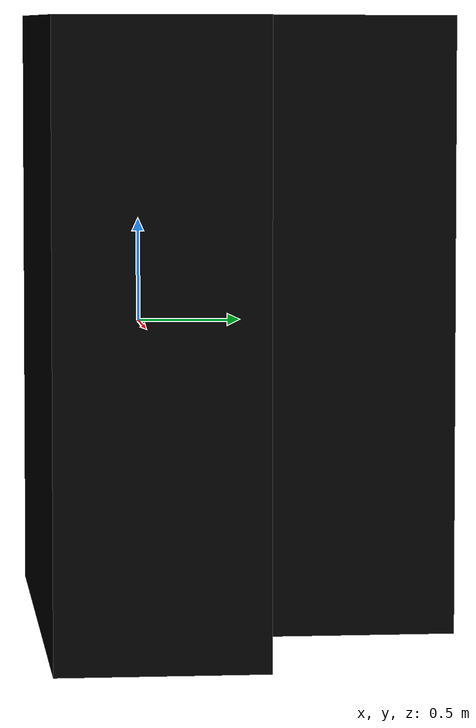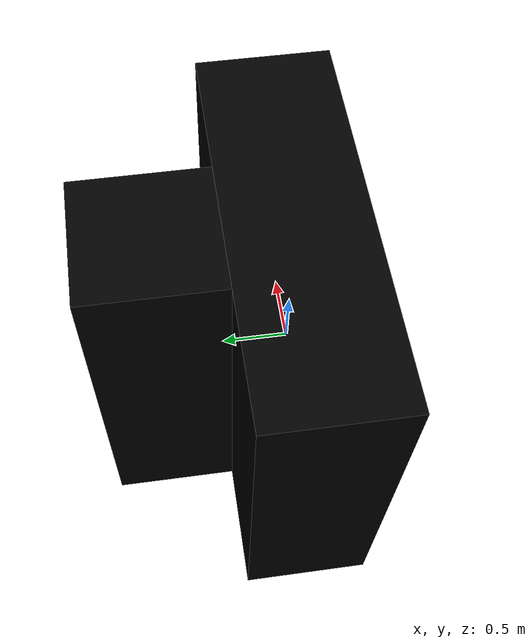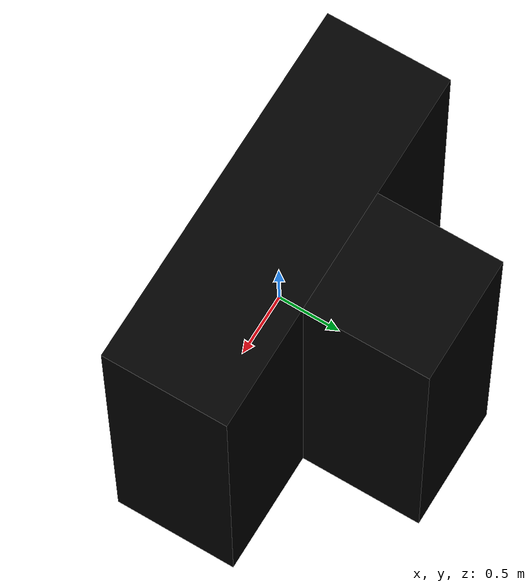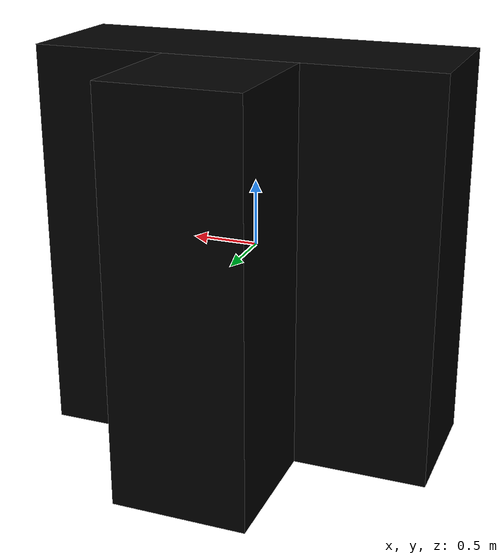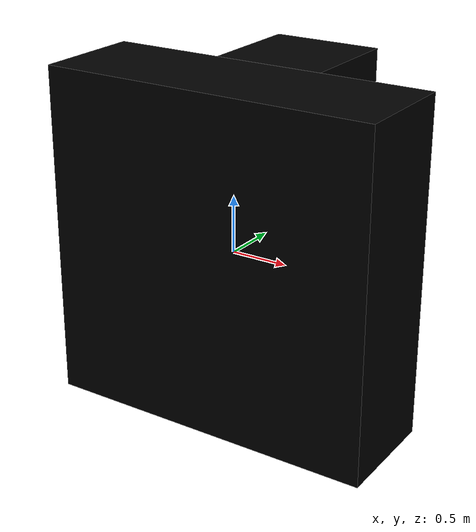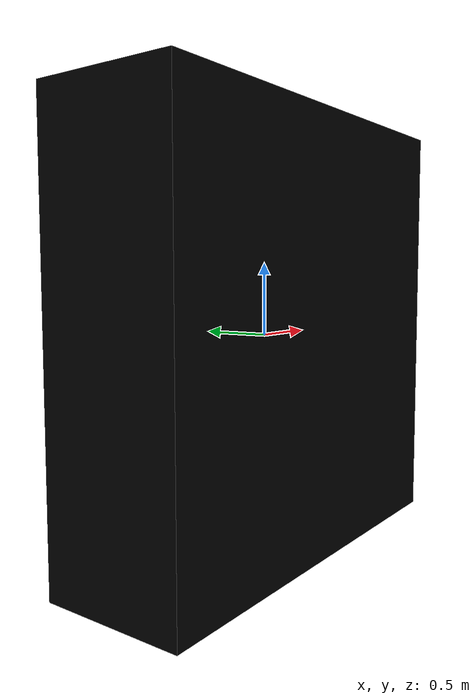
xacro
<?xml version="1.0" encoding="utf-8"?>

<robot xmlns:xacro="http://www.ros.org/wiki/xacro" name="block">
    <link name="base_link">
        <inertial>
            <origin xyz="0.0 0.0 0.0" rpy="0.0 0.0 0.0"/>
            <mass value="0.0"/>
            <inertia ixx="0.0" ixy="0.0" ixz="0.0" iyy="0.0" iyz="0.0" izz="0.0"/>
        </inertial>

        <visual name='v1'>
            <origin rpy="0 0 0" xyz="0 0 0"/>
            <geometry>
                <box size="3.0 1.0 3.0"/>
            </geometry>
            <material name="black">
                <color rgba=".0 .0 .0 1"/>
            </material>
        </visual>
        <visual name='v2'>
            <origin rpy="0 0 0" xyz="0 1 0"/>
            <geometry>
                <box size="1.0 1.0 3.0"/>
            </geometry>
            <material name="black">
                <color rgba=".0 .0 .0 1"/>
            </material>
        </visual>
    </link>
</robot>
